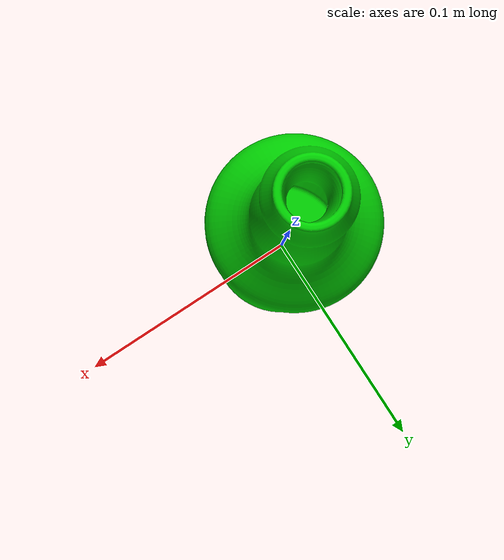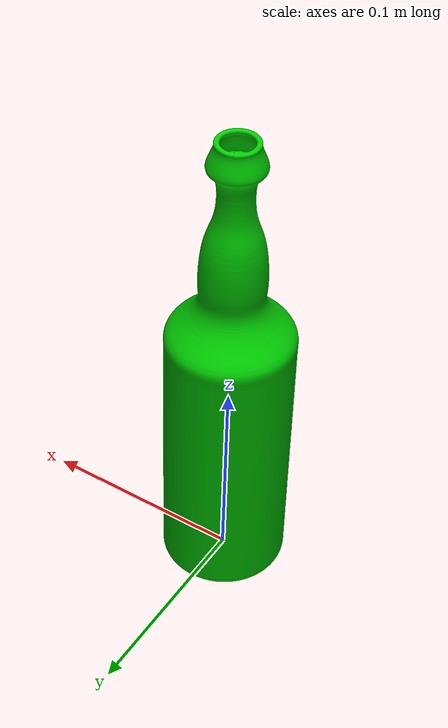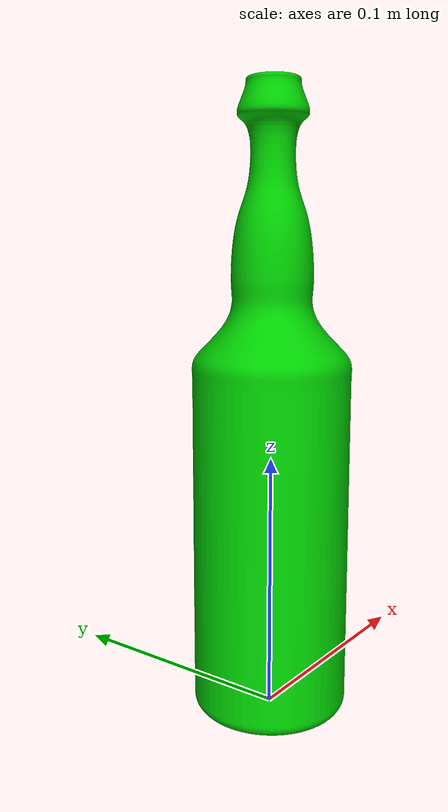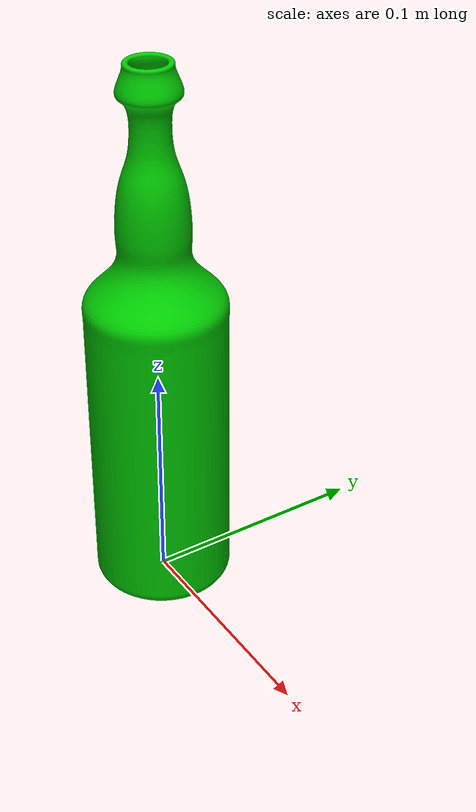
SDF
<?xml version="1.0" ?>
<sdf version="1.6">
    <model name="BottleModel">
        <!-- Inertial properties -->
        <inertial>
            <mass>0.390</mass>  <!-- Adjust the mass value -->
            <pose>0 0 0 0 0 0</pose>
            <inertia>
                <ixx>0.</ixx>
                <ixy>0</ixy>
                <ixz>0</ixz>
                <iyy>0</iyy>
                <iyz>0</iyz>
                <izz>0</izz>
            </inertia>
        </inertial>

        <link name="link">
            <collision name="collision">
                <geometry>
                    <mesh>
                        <scale>1 1 1</scale>
                        <uri>model://BottleModel/meshes/BottleModel.stl</uri>
                    </mesh>
                </geometry>
                <surface>
                    <contact>
                        <ode>
                            <collide_bitmask>1</collide_bitmask>
                        </ode>
                    </contact>
                </surface>
            </collision>

            <visual name="visual">
                <geometry>
                    <mesh>
                        <scale>1 1 1</scale>
                        <uri>model://BottleModel/meshes/BottleModel.dae</uri>
                    </mesh>
                </geometry>
            </visual>
        </link>
    </model>
</sdf>
